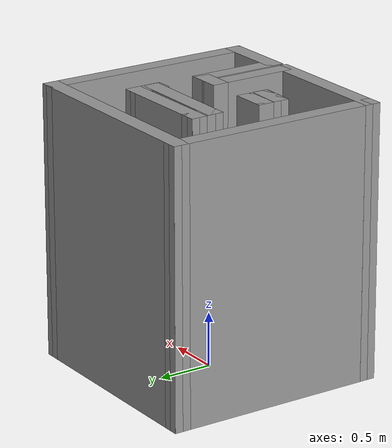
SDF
<?xml version='1.0'?>
<sdf version='1.6'>
  <model name='campus_2_edited'>
    <model name='campus_2'>
      <pose frame=''>-1e-06 2e-06 0 0 -0 -3.13129</pose>
      <link name='Wall_0'>
        <collision name='Wall_0_Collision'>
          <geometry>
            <box>
              <size>0.841845 0.15 2.5</size>
            </box>
          </geometry>
          <pose frame=''>0 0 1.25 0 -0 0</pose>
        </collision>
        <visual name='Wall_0_Visual'>
          <pose frame=''>0 0 1.25 0 -0 0</pose>
          <geometry>
            <box>
              <size>0.841845 0.15 2.5</size>
            </box>
          </geometry>
          <material>
            <script>
              <uri>file://media/materials/scripts/gazebo.material</uri>
              <name>Gazebo/Grey</name>
            </script>
            <ambient>1 1 1 1</ambient>
          </material>
          <meta>
            <layer>0</layer>
          </meta>
        </visual>
        <pose frame=''>-0.402971 0.574729 0 0 -0 -1.5708</pose>
      </link>
      <link name='Wall_1'>
        <collision name='Wall_1_Collision'>
          <geometry>
            <box>
              <size>0.321621 0.15 2.5</size>
            </box>
          </geometry>
          <pose frame=''>0 0 1.25 0 -0 0</pose>
        </collision>
        <visual name='Wall_1_Visual'>
          <pose frame=''>0 0 1.25 0 -0 0</pose>
          <geometry>
            <box>
              <size>0.321621 0.15 2.5</size>
            </box>
          </geometry>
          <material>
            <script>
              <uri>file://media/materials/scripts/gazebo.material</uri>
              <name>Gazebo/Grey</name>
            </script>
            <ambient>1 1 1 1</ambient>
          </material>
          <meta>
            <layer>0</layer>
          </meta>
        </visual>
        <pose frame=''>-0.317208 0.228818 0 0 -0 0</pose>
      </link>
      <link name='Wall_10'>
        <collision name='Wall_10_Collision'>
          <geometry>
            <box>
              <size>0.996214 0.15 2.5</size>
            </box>
          </geometry>
          <pose frame=''>0 0 1.25 0 -0 0</pose>
        </collision>
        <visual name='Wall_10_Visual'>
          <pose frame=''>0 0 1.25 0 -0 0</pose>
          <geometry>
            <box>
              <size>0.996214 0.15 2.5</size>
            </box>
          </geometry>
          <material>
            <script>
              <uri>file://media/materials/scripts/gazebo.material</uri>
              <name>Gazebo/Grey</name>
            </script>
            <ambient>1 1 1 1</ambient>
          </material>
          <meta>
            <layer>0</layer>
          </meta>
        </visual>
        <pose frame=''>0.008692 -0.442992 0 0 -0 0.006757</pose>
      </link>
      <link name='Wall_11'>
        <collision name='Wall_11_Collision'>
          <geometry>
            <box>
              <size>0.315907 0.15 2.5</size>
            </box>
          </geometry>
          <pose frame=''>0 0 1.25 0 -0 0</pose>
        </collision>
        <visual name='Wall_11_Visual'>
          <pose frame=''>0 0 1.25 0 -0 0</pose>
          <geometry>
            <box>
              <size>0.315907 0.15 2.5</size>
            </box>
          </geometry>
          <material>
            <script>
              <uri>file://media/materials/scripts/gazebo.material</uri>
              <name>Gazebo/Grey</name>
            </script>
            <ambient>1 1 1 1</ambient>
          </material>
          <meta>
            <layer>0</layer>
          </meta>
        </visual>
        <pose frame=''>0.42893 -0.357229 0 0 -0 1.60526</pose>
      </link>
      <link name='Wall_12'>
        <collision name='Wall_12_Collision'>
          <geometry>
            <box>
              <size>0.984838 0.15 2.5</size>
            </box>
          </geometry>
          <pose frame=''>0 0 1.25 0 -0 0</pose>
        </collision>
        <visual name='Wall_12_Visual'>
          <pose frame=''>0 0 1.25 0 -0 0</pose>
          <geometry>
            <box>
              <size>0.984838 0.15 2.5</size>
            </box>
          </geometry>
          <material>
            <script>
              <uri>file://media/materials/scripts/gazebo.material</uri>
              <name>Gazebo/Grey</name>
            </script>
            <ambient>1 1 1 1</ambient>
          </material>
          <meta>
            <layer>0</layer>
          </meta>
        </visual>
        <pose frame=''>0.008692 -0.271466 0 0 -0 3.13474</pose>
      </link>
      <link name='Wall_15'>
        <collision name='Wall_15_Collision'>
          <geometry>
            <box>
              <size>0.304373 0.15 2.5</size>
            </box>
          </geometry>
          <pose frame=''>0 0 1.25 0 -0 0</pose>
        </collision>
        <visual name='Wall_15_Visual'>
          <pose frame=''>0 0 1.25 0 -0 0</pose>
          <geometry>
            <box>
              <size>0.304373 0.15 2.5</size>
            </box>
          </geometry>
          <material>
            <script>
              <uri>file://media/materials/scripts/gazebo.material</uri>
              <name>Gazebo/Grey</name>
            </script>
            <ambient>1 1 1 1</ambient>
          </material>
          <meta>
            <layer>0</layer>
          </meta>
        </visual>
        <pose frame=''>0.265981 0.306005 0 0 -0 -1.5708</pose>
      </link>
      <link name='Wall_16'>
        <collision name='Wall_16_Collision'>
          <geometry>
            <box>
              <size>0.321621 0.15 2.5</size>
            </box>
          </geometry>
          <pose frame=''>0 0 1.25 0 -0 0</pose>
        </collision>
        <visual name='Wall_16_Visual'>
          <pose frame=''>0 0 1.25 0 -0 0</pose>
          <geometry>
            <box>
              <size>0.321621 0.15 2.5</size>
            </box>
          </geometry>
          <material>
            <script>
              <uri>file://media/materials/scripts/gazebo.material</uri>
              <name>Gazebo/Grey</name>
            </script>
            <ambient>1 1 1 1</ambient>
          </material>
          <meta>
            <layer>0</layer>
          </meta>
        </visual>
        <pose frame=''>0.351744 0.228818 0 0 -0 0</pose>
      </link>
      <link name='Wall_17'>
        <collision name='Wall_17_Collision'>
          <geometry>
            <box>
              <size>0.304373 0.15 2.5</size>
            </box>
          </geometry>
          <pose frame=''>0 0 1.25 0 -0 0</pose>
        </collision>
        <visual name='Wall_17_Visual'>
          <pose frame=''>0 0 1.25 0 -0 0</pose>
          <geometry>
            <box>
              <size>0.304373 0.15 2.5</size>
            </box>
          </geometry>
          <material>
            <script>
              <uri>file://media/materials/scripts/gazebo.material</uri>
              <name>Gazebo/Grey</name>
            </script>
            <ambient>1 1 1 1</ambient>
          </material>
          <meta>
            <layer>0</layer>
          </meta>
        </visual>
        <pose frame=''>0.437506 0.306005 0 0 -0 1.5708</pose>
      </link>
      <link name='Wall_18'>
        <collision name='Wall_18_Collision'>
          <geometry>
            <box>
              <size>0.315907 0.15 2.5</size>
            </box>
          </geometry>
          <pose frame=''>0 0 1.25 0 -0 0</pose>
        </collision>
        <visual name='Wall_18_Visual'>
          <pose frame=''>0 0 1.25 0 -0 0</pose>
          <geometry>
            <box>
              <size>0.315907 0.15 2.5</size>
            </box>
          </geometry>
          <material>
            <script>
              <uri>file://media/materials/scripts/gazebo.material</uri>
              <name>Gazebo/Grey</name>
            </script>
            <ambient>1 1 1 1</ambient>
          </material>
          <meta>
            <layer>0</layer>
          </meta>
        </visual>
        <pose frame=''>0.354602 0.38605 0 0 -0 3.10712</pose>
      </link>
      <link name='Wall_2'>
        <collision name='Wall_2_Collision'>
          <geometry>
            <box>
              <size>0.876149 0.15 2.5</size>
            </box>
          </geometry>
          <pose frame=''>0 0 1.25 0 -0 0</pose>
        </collision>
        <visual name='Wall_2_Visual'>
          <pose frame=''>0 0 1.25 0 -0 0</pose>
          <geometry>
            <box>
              <size>0.876149 0.15 2.5</size>
            </box>
          </geometry>
          <material>
            <script>
              <uri>file://media/materials/scripts/gazebo.material</uri>
              <name>Gazebo/Grey</name>
            </script>
            <ambient>1 1 1 1</ambient>
          </material>
          <meta>
            <layer>0</layer>
          </meta>
        </visual>
        <pose frame=''>-0.231445 0.591881 0 0 -0 1.5708</pose>
      </link>
      <link name='Wall_3'>
        <collision name='Wall_3_Collision'>
          <geometry>
            <box>
              <size>1.32781 0.15 2.5</size>
            </box>
          </geometry>
          <pose frame=''>0 0 1.25 0 -0 0</pose>
        </collision>
        <visual name='Wall_3_Visual'>
          <pose frame=''>0 0 1.25 0 -0 0</pose>
          <geometry>
            <box>
              <size>1.32781 0.15 2.5</size>
            </box>
          </geometry>
          <material>
            <script>
              <uri>file://media/materials/scripts/gazebo.material</uri>
              <name>Gazebo/Grey</name>
            </script>
            <ambient>1 1 1 1</ambient>
          </material>
          <meta>
            <layer>0</layer>
          </meta>
        </visual>
        <pose frame=''>0.357461 0.954944 0 0 -0 0</pose>
      </link>
      <link name='Wall_4'>
        <collision name='Wall_4_Collision'>
          <geometry>
            <box>
              <size>2.05966 0.15 2.5</size>
            </box>
          </geometry>
          <pose frame=''>0 0 1.25 0 -0 0</pose>
        </collision>
        <visual name='Wall_4_Visual'>
          <pose frame=''>0 0 1.25 0 -0 0</pose>
          <geometry>
            <box>
              <size>2.05966 0.15 2.5</size>
            </box>
          </geometry>
          <material>
            <script>
              <uri>file://media/materials/scripts/gazebo.material</uri>
              <name>Gazebo/Grey</name>
            </script>
            <ambient>1 1 1 1</ambient>
          </material>
          <meta>
            <layer>0</layer>
          </meta>
        </visual>
        <pose frame=''>0.943508 0.000117 0 0 -0 -1.57379</pose>
      </link>
      <link name='Wall_5'>
        <collision name='Wall_5_Collision'>
          <geometry>
            <box>
              <size>2.03682 0.15 2.5</size>
            </box>
          </geometry>
          <pose frame=''>0 0 1.25 0 -0 0</pose>
        </collision>
        <visual name='Wall_5_Visual'>
          <pose frame=''>0 0 1.25 0 -0 0</pose>
          <geometry>
            <box>
              <size>2.03682 0.15 2.5</size>
            </box>
          </geometry>
          <material>
            <script>
              <uri>file://media/materials/scripts/gazebo.material</uri>
              <name>Gazebo/Grey</name>
            </script>
            <ambient>1 1 1 1</ambient>
          </material>
          <meta>
            <layer>0</layer>
          </meta>
        </visual>
        <pose frame=''>-0.002743 -0.948994 0 0 -0 3.13553</pose>
      </link>
      <link name='Wall_6'>
        <collision name='Wall_6_Collision'>
          <geometry>
            <box>
              <size>2.0311 0.15 2.5</size>
            </box>
          </geometry>
          <pose frame=''>0 0 1.25 0 -0 0</pose>
        </collision>
        <visual name='Wall_6_Visual'>
          <pose frame=''>0 0 1.25 0 -0 0</pose>
          <geometry>
            <box>
              <size>2.0311 0.15 2.5</size>
            </box>
          </geometry>
          <material>
            <script>
              <uri>file://media/materials/scripts/gazebo.material</uri>
              <name>Gazebo/Grey</name>
            </script>
            <ambient>1 1 1 1</ambient>
          </material>
          <meta>
            <layer>0</layer>
          </meta>
        </visual>
        <pose frame=''>-0.940419 -0.002742 0 0 -0 1.56472</pose>
      </link>
      <link name='Wall_7'>
        <collision name='Wall_7_Collision'>
          <geometry>
            <box>
              <size>0.676013 0.15 2.5</size>
            </box>
          </geometry>
          <pose frame=''>0 0 1.25 0 -0 0</pose>
        </collision>
        <visual name='Wall_7_Visual'>
          <pose frame=''>0 0 1.25 0 -0 0</pose>
          <geometry>
            <box>
              <size>0.676013 0.15 2.5</size>
            </box>
          </geometry>
          <material>
            <script>
              <uri>file://media/materials/scripts/gazebo.material</uri>
              <name>Gazebo/Grey</name>
            </script>
            <ambient>1 1 1 1</ambient>
          </material>
          <meta>
            <layer>0</layer>
          </meta>
        </visual>
        <pose frame=''>-0.671695 0.937792 0 0 -0 0</pose>
      </link>
      <link name='Wall_9'>
        <collision name='Wall_9_Collision'>
          <geometry>
            <box>
              <size>0.344396 0.15 2.5</size>
            </box>
          </geometry>
          <pose frame=''>0 0 1.25 0 -0 0</pose>
        </collision>
        <visual name='Wall_9_Visual'>
          <pose frame=''>0 0 1.25 0 -0 0</pose>
          <geometry>
            <box>
              <size>0.344396 0.15 2.5</size>
            </box>
          </geometry>
          <material>
            <script>
              <uri>file://media/materials/scripts/gazebo.material</uri>
              <name>Gazebo/Grey</name>
            </script>
            <ambient>1 1 1 1</ambient>
          </material>
          <meta>
            <layer>0</layer>
          </meta>
        </visual>
        <pose frame=''>-0.414406 -0.348653 0 0 -0 -1.5708</pose>
      </link>
      <static>1</static>
    </model>
    <static>0</static>
    <allow_auto_disable>1</allow_auto_disable>
  </model>
</sdf>
